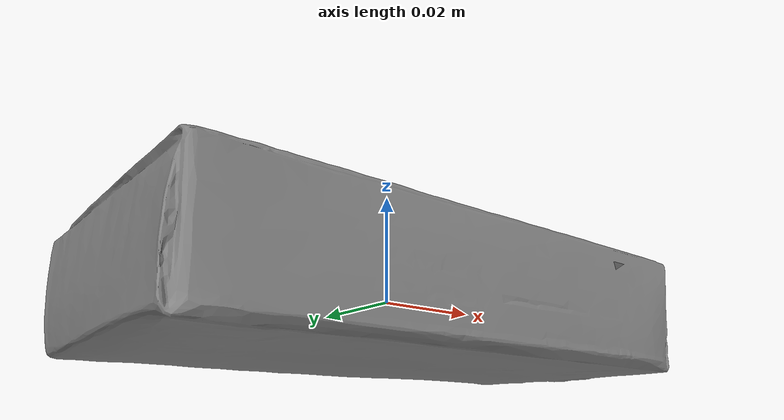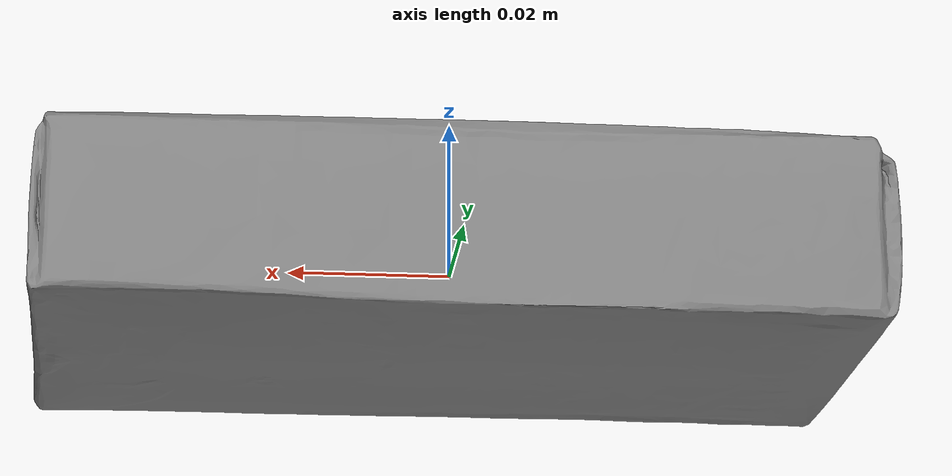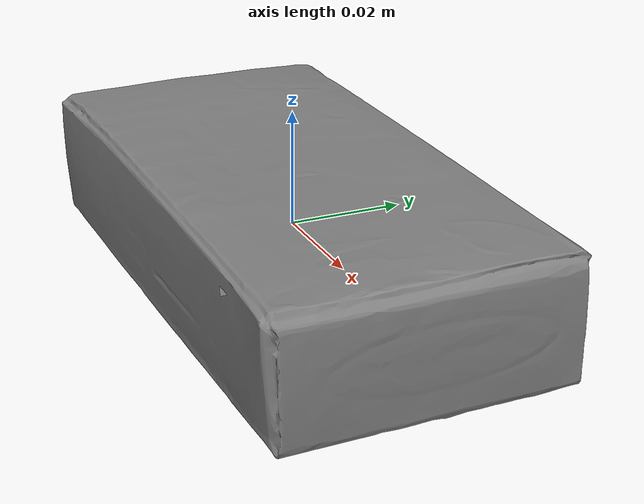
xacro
<?xml version="1.0"?>
<robot name="butter" xmlns:xacro="http://ros.org/wiki/xacro">

  <!-- butter center of obj/stl -->
  <link name="butter">
        <visual>
        <geometry>
          <mesh filename="file:///objects/butter/meshes/butter.stl">
            <scale>1 1 1</scale>
          </mesh>
        </geometry>
        <material name="grey">
          <color rgba="0.5 0.5 0.5 1.0"/>
        </material>
      </visual>
  </link>

  <!-- butter grasping_frame -->
  <link name="butter_grasping_frame">
    </link>

  <joint name="butter_to_butter_grasping_frame" type="fixed">
    <origin xyz="0.0 0.0 0.0" rpy="0 0 0"/>
    <parent link="butter"/>
    <child link="butter_grasping_frame" />
  </joint>

  <!-- butter base -->
  <link name="butter_base">
    </link>

  <joint name="butter_to_butter_base" type="fixed">
    <origin xyz="0.0 0.0 -0.011968" rpy="0 0 0"/>
    <parent link="butter"/>
    <child link="butter_base" />
  </joint>

</robot>
